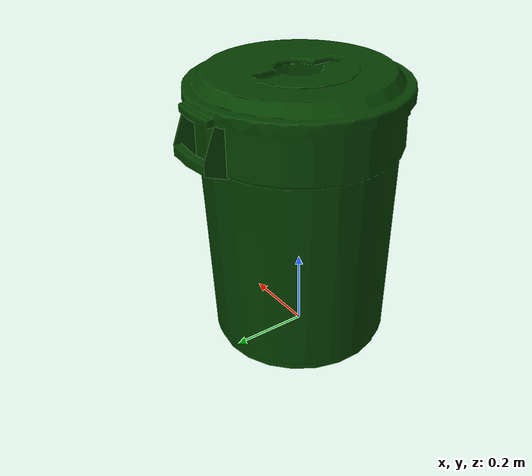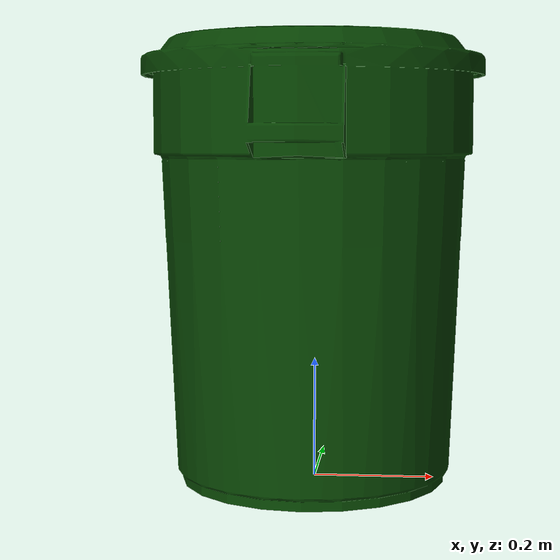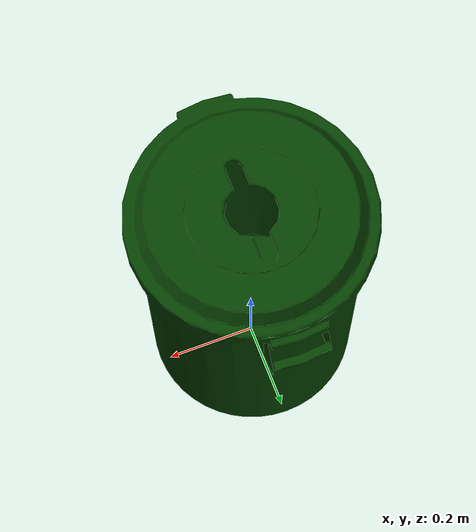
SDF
<?xml version="1.0" ?>
<sdf version="1.5">
  <model name="first_2015_trash_can">
    <link name="link">
      <inertial>
        <pose>0 0 0.3683 0 0 0</pose>
        <mass>4.83076</mass>
        <inertia>
          <ixx>0.281534052</ixx>
          <ixy>0</ixy>
          <ixz>0</ixz>
          <iyy>0.281534052</iyy>
          <iyz>0</iyz>
          <izz>0.126222831</izz>
        </inertia>
      </inertial>

      <visual name="visual">
        <geometry>
          <mesh>
            <uri>model://first_2015_trash_can/meshes/trash_can.dae</uri>
          </mesh>
        </geometry>
      </visual>

      <collision name="collision">
        <geometry>
          <mesh>
            <uri>model://first_2015_trash_can/meshes/trash_can.dae</uri>
          </mesh>
        </geometry>
      </collision>
    </link>
  </model>
</sdf>
